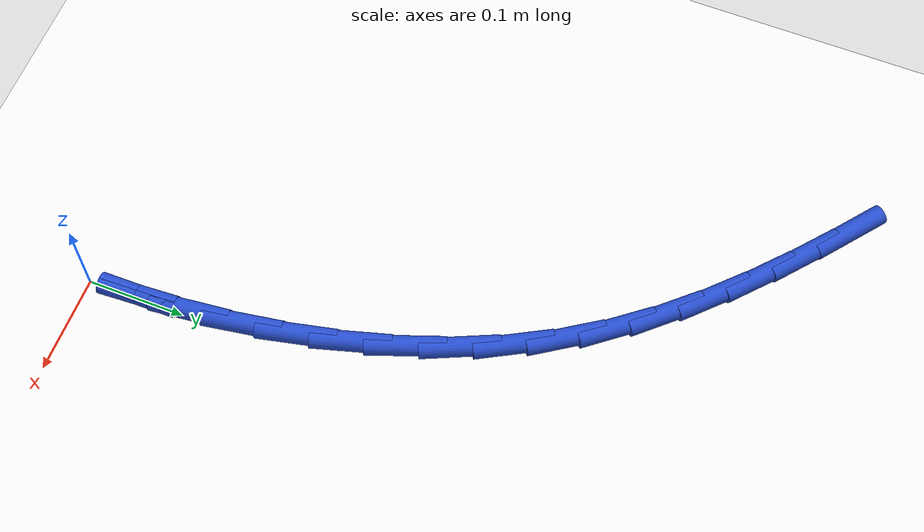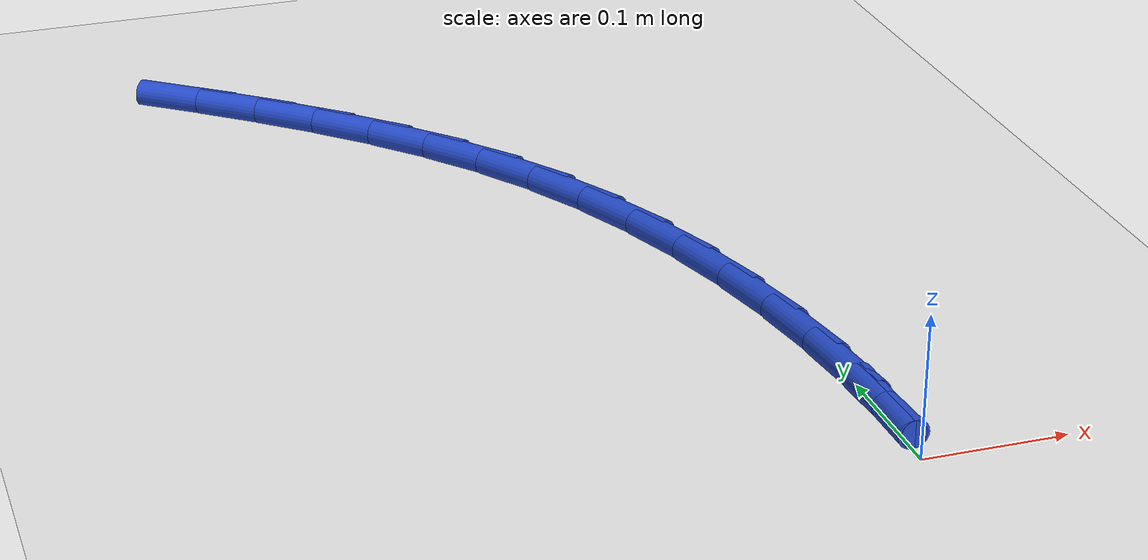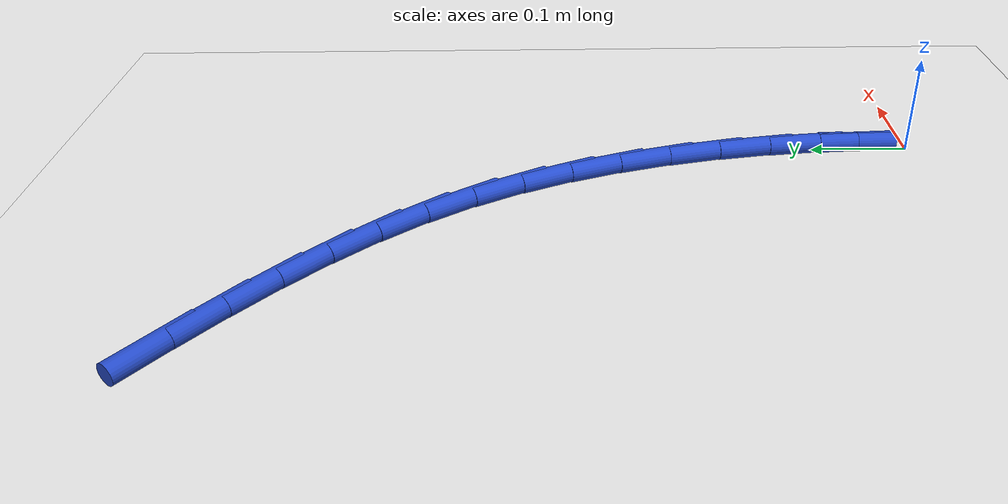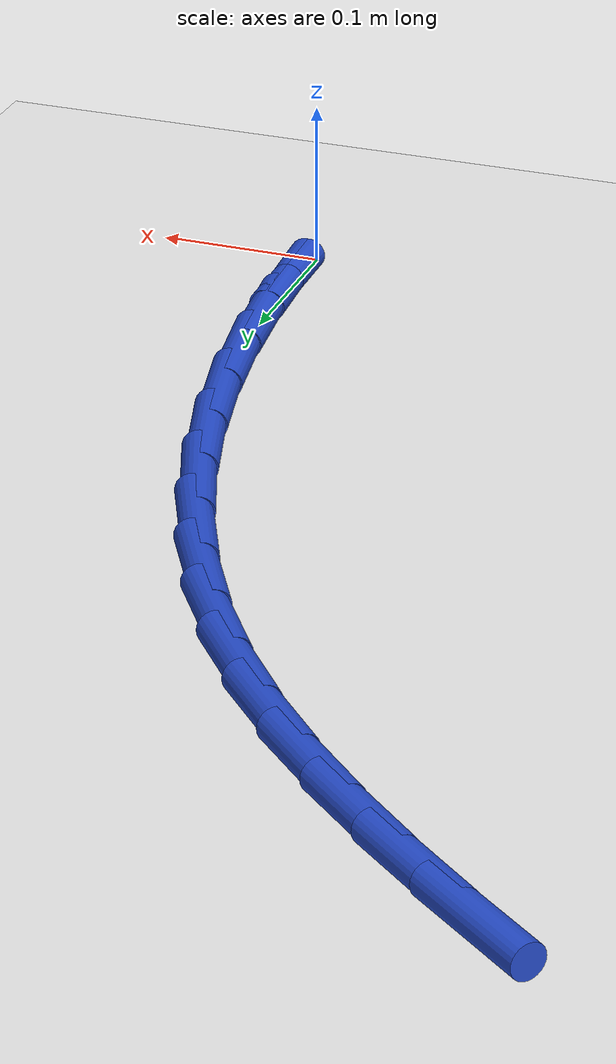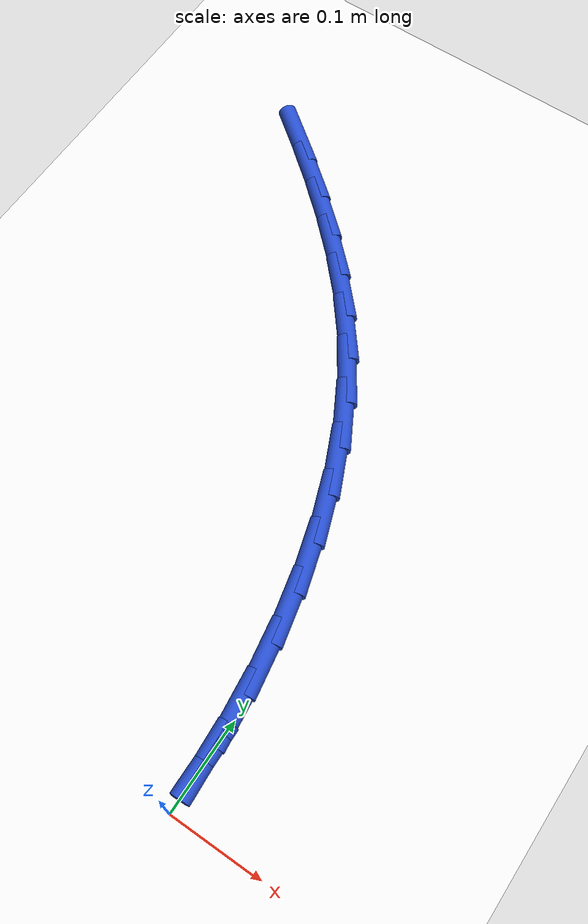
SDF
<sdf version="1.6">
 <world name="default">
  <model name="ground_plane">
   <static>1</static>
   <link name="link">
    <collision name="collision">
     <geometry><plane><normal>0 0 1</normal><size>100 100</size></plane></geometry>
     <surface><friction><ode><mu>100</mu><mu2>50</mu2></ode></friction></surface>
    </collision>
    <visual name="visual">
     <cast_shadows>0</cast_shadows>
     <geometry><plane><normal>0 0 1</normal><size>100 100</size></plane></geometry>
     <material>
      <script><uri>file://media/materials/scripts/gazebo.material</uri><name>Gazebo/WhiteGlow</name></script>
     </material>
    </visual>
   </link>
  </model>
  <model name="line">
   <link name="link_1">
    <pose>-0.0006108611740502661 0.05379803020650147 0.01 0 1.57 -1.5104588985521683</pose>
    <collision name="collision">
     <geometry><cylinder><radius>0.01</radius><length>0.08</length></cylinder></geometry>
    </collision>
    <visual name="visual">
     <material>
      <script><name>Gazebo/Blue</name><uri>file://media/materials/scripts/gazebo.material</uri></script>
     </material>
     <geometry><cylinder><radius>0.01</radius><length>0.08</length></cylinder></geometry>
    </visual>
   </link>
   <link name="link_2">
    <pose>-0.0038654786067991815 0.10767283024457287 0.01 0 1.57 -1.4591795822138383</pose>
    <collision name="collision">
     <geometry><cylinder><radius>0.01</radius><length>0.08</length></cylinder></geometry>
    </collision>
    <visual name="visual">
     <material>
      <script><name>Gazebo/Blue</name><uri>file://media/materials/scripts/gazebo.material</uri></script>
     </material>
     <geometry><cylinder><radius>0.01</radius><length>0.08</length></cylinder></geometry>
    </visual>
   </link>
   <link name="link_3">
    <pose>-0.009872792725552273 0.16127004298933859 0.01 0 1.57 -1.4048871075597784</pose>
    <collision name="collision">
     <geometry><cylinder><radius>0.01</radius><length>0.08</length></cylinder></geometry>
    </collision>
    <visual name="visual">
     <material>
      <script><name>Gazebo/Blue</name><uri>file://media/materials/scripts/gazebo.material</uri></script>
     </material>
     <geometry><cylinder><radius>0.01</radius><length>0.08</length></cylinder></geometry>
    </visual>
   </link>
   <link name="link_4">
    <pose>-0.018741743957615034 0.21423531131592274 0.01 0 1.57 -1.3468418156582547</pose>
    <collision name="collision">
     <geometry><cylinder><radius>0.01</radius><length>0.08</length></cylinder></geometry>
    </collision>
    <visual name="visual">
     <material>
      <script><name>Gazebo/Blue</name><uri>file://media/materials/scripts/gazebo.material</uri></script>
     </material>
     <geometry><cylinder><radius>0.01</radius><length>0.08</length></cylinder></geometry>
    </visual>
   </link>
   <link name="link_5">
    <pose>-0.030581272730293006 0.26621427809944964 0.01 0 1.57 -1.2842828020033086</pose>
    <collision name="collision">
     <geometry><cylinder><radius>0.01</radius><length>0.08</length></cylinder></geometry>
    </collision>
    <visual name="visual">
     <material>
      <script><name>Gazebo/Blue</name><uri>file://media/materials/scripts/gazebo.material</uri></script>
     </material>
     <geometry><cylinder><radius>0.01</radius><length>0.08</length></cylinder></geometry>
    </visual>
   </link>
   <link name="link_6">
    <pose>-0.04550031947089171 0.3168525862150436 0.01 0 1.57 -1.216443599262906</pose>
    <collision name="collision">
     <geometry><cylinder><radius>0.01</radius><length>0.08</length></cylinder></geometry>
    </collision>
    <visual name="visual">
     <material>
      <script><name>Gazebo/Blue</name><uri>file://media/materials/scripts/gazebo.material</uri></script>
     </material>
     <geometry><cylinder><radius>0.01</radius><length>0.08</length></cylinder></geometry>
    </visual>
   </link>
   <link name="link_7">
    <pose>-0.06360782460671666 0.3657958785378287 0.01 0 1.57 -1.1425884633805177</pose>
    <collision name="collision">
     <geometry><cylinder><radius>0.01</radius><length>0.08</length></cylinder></geometry>
    </collision>
    <visual name="visual">
     <material>
      <script><name>Gazebo/Blue</name><uri>file://media/materials/scripts/gazebo.material</uri></script>
     </material>
     <geometry><cylinder><radius>0.01</radius><length>0.08</length></cylinder></geometry>
    </visual>
   </link>
   <link name="link_8">
    <pose>-0.08501272856507337 0.41268979794292926 0.01 0 1.57 -1.0620766721219024</pose>
    <collision name="collision">
     <geometry><cylinder><radius>0.01</radius><length>0.08</length></cylinder></geometry>
    </collision>
    <visual name="visual">
     <material>
      <script><name>Gazebo/Blue</name><uri>file://media/materials/scripts/gazebo.material</uri></script>
     </material>
     <geometry><cylinder><radius>0.01</radius><length>0.08</length></cylinder></geometry>
    </visual>
   </link>
   <link name="link_9">
    <pose>-0.1098239717732674 0.45717998730546955 0.01 0 1.57 -0.9759703594910077</pose>
    <collision name="collision">
     <geometry><cylinder><radius>0.01</radius><length>0.08</length></cylinder></geometry>
    </collision>
    <visual name="visual">
     <material>
      <script><name>Gazebo/Blue</name><uri>file://media/materials/scripts/gazebo.material</uri></script>
     </material>
     <geometry><cylinder><radius>0.01</radius><length>0.08</length></cylinder></geometry>
    </visual>
   </link>
   <link name="link_10">
    <pose>-0.13810469923472324 0.4989802713574803 0.01 0 1.57 -0.8950071927523153</pose>
    <collision name="collision">
     <geometry><cylinder><radius>0.01</radius><length>0.08</length></cylinder></geometry>
    </collision>
    <visual name="visual">
     <material>
      <script><name>Gazebo/Blue</name><uri>file://media/materials/scripts/gazebo.material</uri></script>
     </material>
     <geometry><cylinder><radius>0.01</radius><length>0.08</length></cylinder></geometry>
    </visual>
   </link>
   <link name="link_11">
    <pose>-0.1696047862763786 0.5382708818744318 0.01 0 1.57 -0.8247960553946913</pose>
    <collision name="collision">
     <geometry><cylinder><radius>0.01</radius><length>0.08</length></cylinder></geometry>
    </collision>
    <visual name="visual">
     <material>
      <script><name>Gazebo/Blue</name><uri>file://media/materials/scripts/gazebo.material</uri></script>
     </material>
     <geometry><cylinder><radius>0.01</radius><length>0.08</length></cylinder></geometry>
    </visual>
   </link>
   <link name="link_12">
    <pose>-0.20394298362594068 0.5754272736017769 0.01 0 1.57 -0.7660589732436336</pose>
    <collision name="collision">
     <geometry><cylinder><radius>0.01</radius><length>0.08</length></cylinder></geometry>
    </collision>
    <visual name="visual">
     <material>
      <script><name>Gazebo/Blue</name><uri>file://media/materials/scripts/gazebo.material</uri></script>
     </material>
     <geometry><cylinder><radius>0.01</radius><length>0.08</length></cylinder></geometry>
    </visual>
   </link>
   <link name="link_13">
    <pose>-0.24073759829280034 0.6108255619085893 0.01 0 1.57 -0.7189120095387164</pose>
    <collision name="collision">
     <geometry><cylinder><radius>0.01</radius><length>0.08</length></cylinder></geometry>
    </collision>
    <visual name="visual">
     <material>
      <script><name>Gazebo/Blue</name><uri>file://media/materials/scripts/gazebo.material</uri></script>
     </material>
     <geometry><cylinder><radius>0.01</radius><length>0.08</length></cylinder></geometry>
    </visual>
   </link>
   <link name="link_14">
    <pose>-0.27960693728634844 0.644841862163943 0.01 0 1.57 -0.683110544408866</pose>
    <collision name="collision">
     <geometry><cylinder><radius>0.01</radius><length>0.08</length></cylinder></geometry>
    </collision>
    <visual name="visual">
     <material>
      <script><name>Gazebo/Blue</name><uri>file://media/materials/scripts/gazebo.material</uri></script>
     </material>
     <geometry><cylinder><radius>0.01</radius><length>0.08</length></cylinder></geometry>
    </visual>
   </link>
   <link name="link_15">
    <pose>-0.32016930761597595 0.6778522897369118 0.01 0 1.57 -0.6582430936653229</pose>
    <collision name="collision">
     <geometry><cylinder><radius>0.01</radius><length>0.08</length></cylinder></geometry>
    </collision>
    <visual name="visual">
     <material>
      <script><name>Gazebo/Blue</name><uri>file://media/materials/scripts/gazebo.material</uri></script>
     </material>
     <geometry><cylinder><radius>0.01</radius><length>0.08</length></cylinder></geometry>
    </visual>
   </link>
   <link name="link_131">
    <pose>-0.0005905750643629727 0.05384501580722668 0.01 0 1.57 -1.5598287121418128</pose>
    <collision name="collision">
     <geometry><cylinder><radius>0.01</radius><length>0.08</length></cylinder></geometry>
    </collision>
    <visual name="visual">
     <material>
      <script><name>Gazebo/Blue</name><uri>file://media/materials/scripts/gazebo.material</uri></script>
     </material>
     <geometry><cylinder><radius>0.01</radius><length>0.08</length></cylinder></geometry>
    </visual>
   </link>
  </model>
 </world>
</sdf>
